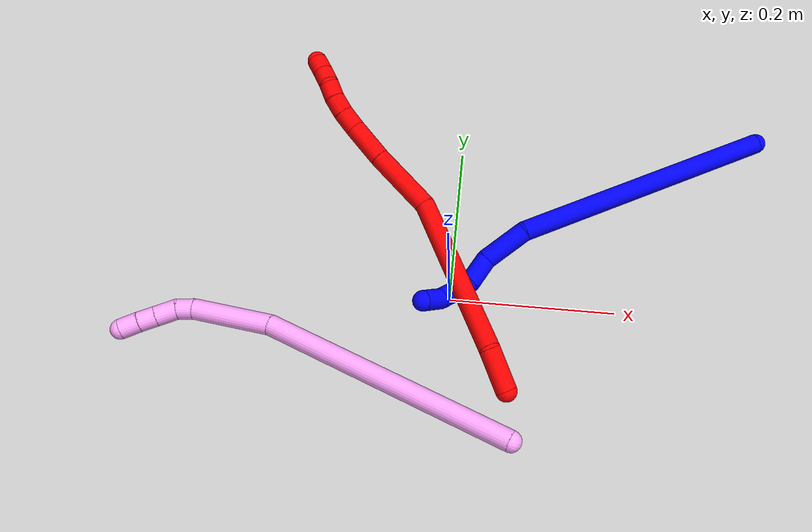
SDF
<sdf version="1.7">
 <world name="default">
  <model name="1">
   <static>0</static>
   <link name="1">
    <collision name="collision-cylinder-e_1_1_4">
     <pose>-0.060836 -0.056444 -0.144412 2.769 -0.373905 -1.57439</pose>
     <geometry><cylinder><radius>0.0125</radius><length>0.333117</length></cylinder></geometry>
     <surface>
      <friction><ode><mu>1.16</mu><mu2>1.16</mu2><slip1>0</slip1><slip2>0</slip2></ode></friction>
      <contact><ode><kp>1e+06</kp><kd>1</kd><max_vel>0</max_vel><min_depth>0.001</min_depth></ode></contact>
     </surface>
    </collision>
    <visual name="visual-cylinder-e_1_1_4">
     <pose>-0.060836 -0.056444 -0.144412 2.769 -0.373905 -1.57439</pose>
     <geometry><cylinder><radius>0.0125</radius><length>0.333117</length></cylinder></geometry>
     <material><ambient>0 0 1 1</ambient></material>
    </visual>
    <collision name="collision-cylinder-e_2_4_5">
     <pose>-0.13418 -0.113746 -0.315101 3.10893 -0.444044 -2.99712</pose>
     <geometry><cylinder><radius>0.0125</radius><length>0.058231</length></cylinder></geometry>
     <surface>
      <friction><ode><mu>1.16</mu><mu2>1.16</mu2><slip1>0</slip1><slip2>0</slip2></ode></friction>
      <contact><ode><kp>1e+06</kp><kd>1</kd><max_vel>0</max_vel><min_depth>0.001</min_depth></ode></contact>
     </surface>
    </collision>
    <visual name="visual-cylinder-e_2_4_5">
     <pose>-0.13418 -0.113746 -0.315101 3.10893 -0.444044 -2.99712</pose>
     <geometry><cylinder><radius>0.0125</radius><length>0.058231</length></cylinder></geometry>
     <material><ambient>0 0 1 1</ambient></material>
    </visual>
    <collision name="collision-cylinder-e_3_5_6">
     <pose>-0.14869 -0.11175 -0.35885 -2.97962 -0.112623 1.2141</pose>
     <geometry><cylinder><radius>0.0125</radius><length>0.035632</length></cylinder></geometry>
     <surface>
      <friction><ode><mu>1.16</mu><mu2>1.16</mu2><slip1>0</slip1><slip2>0</slip2></ode></friction>
      <contact><ode><kp>1e+06</kp><kd>1</kd><max_vel>0</max_vel><min_depth>0.001</min_depth></ode></contact>
     </surface>
    </collision>
    <visual name="visual-cylinder-e_3_5_6">
     <pose>-0.14869 -0.11175 -0.35885 -2.97962 -0.112623 1.2141</pose>
     <geometry><cylinder><radius>0.0125</radius><length>0.035632</length></cylinder></geometry>
     <material><ambient>0 0 1 1</ambient></material>
    </visual>
    <collision name="collision-cylinder-e_4_6_7">
     <pose>-0.152213 -0.111948 -0.386352 2.8461 -0.144104 -0.903075</pose>
     <geometry><cylinder><radius>0.0125</radius><length>0.02119</length></cylinder></geometry>
     <surface>
      <friction><ode><mu>1.16</mu><mu2>1.16</mu2><slip1>0</slip1><slip2>0</slip2></ode></friction>
      <contact><ode><kp>1e+06</kp><kd>1</kd><max_vel>0</max_vel><min_depth>0.001</min_depth></ode></contact>
     </surface>
    </collision>
    <visual name="visual-cylinder-e_4_6_7">
     <pose>-0.152213 -0.111948 -0.386352 2.8461 -0.144104 -0.903075</pose>
     <geometry><cylinder><radius>0.0125</radius><length>0.02119</length></cylinder></geometry>
     <material><ambient>0 0 1 1</ambient></material>
    </visual>
    <collision name="collision-cylinder-e_5_7_8">
     <pose>-0.154818 -0.118677 -0.406695 2.79922 -0.098601 -0.556026</pose>
     <geometry><cylinder><radius>0.0125</radius><length>0.022001</length></cylinder></geometry>
     <surface>
      <friction><ode><mu>1.16</mu><mu2>1.16</mu2><slip1>0</slip1><slip2>0</slip2></ode></friction>
      <contact><ode><kp>1e+06</kp><kd>1</kd><max_vel>0</max_vel><min_depth>0.001</min_depth></ode></contact>
     </surface>
    </collision>
    <visual name="visual-cylinder-e_5_7_8">
     <pose>-0.154818 -0.118677 -0.406695 2.79922 -0.098601 -0.556026</pose>
     <geometry><cylinder><radius>0.0125</radius><length>0.022001</length></cylinder></geometry>
     <material><ambient>0 0 1 1</ambient></material>
    </visual>
    <collision name="collision-cylinder-e_6_8_2">
     <pose>-0.153213 -0.132072 -0.427996 2.41745 0.181164 0.47072</pose>
     <geometry><cylinder><radius>0.0125</radius><length>0.02983</length></cylinder></geometry>
     <surface>
      <friction><ode><mu>1.16</mu><mu2>1.16</mu2><slip1>0</slip1><slip2>0</slip2></ode></friction>
      <contact><ode><kp>1e+06</kp><kd>1</kd><max_vel>0</max_vel><min_depth>0.001</min_depth></ode></contact>
     </surface>
    </collision>
    <visual name="visual-cylinder-e_6_8_2">
     <pose>-0.153213 -0.132072 -0.427996 2.41745 0.181164 0.47072</pose>
     <geometry><cylinder><radius>0.0125</radius><length>0.02983</length></cylinder></geometry>
     <material><ambient>0 0 1 1</ambient></material>
    </visual>
    <collision name="collision-sphere-2">
     <pose>-0.150526 -0.141791 -0.438986 0 -0 0</pose>
     <geometry><sphere><radius>0.0125</radius></sphere></geometry>
     <surface>
      <friction><ode><mu>1.16</mu><mu2>1.16</mu2><slip1>0</slip1><slip2>0</slip2></ode></friction>
      <contact><ode><kp>1e+06</kp><kd>1</kd><max_vel>0</max_vel><min_depth>0.001</min_depth></ode></contact>
     </surface>
    </collision>
    <visual name="visual-sphere-2">
     <pose>-0.150526 -0.141791 -0.438986 0 -0 0</pose>
     <geometry><sphere><radius>0.0125</radius></sphere></geometry>
     <material><ambient>0 0 1 1</ambient></material>
    </visual>
    <collision name="collision-sphere-4">
     <pose>-0.121672 -0.112887 -0.288824 0 -0 0</pose>
     <geometry><sphere><radius>0.0125</radius></sphere></geometry>
     <surface>
      <friction><ode><mu>1.16</mu><mu2>1.16</mu2><slip1>0</slip1><slip2>0</slip2></ode></friction>
      <contact><ode><kp>1e+06</kp><kd>1</kd><max_vel>0</max_vel><min_depth>0.001</min_depth></ode></contact>
     </surface>
    </collision>
    <visual name="visual-sphere-4">
     <pose>-0.121672 -0.112887 -0.288824 0 -0 0</pose>
     <geometry><sphere><radius>0.0125</radius></sphere></geometry>
     <material><ambient>0 0 1 1</ambient></material>
    </visual>
    <collision name="collision-sphere-1">
     <geometry><sphere><radius>0.0125</radius></sphere></geometry>
     <surface>
      <friction><ode><mu>1.16</mu><mu2>1.16</mu2><slip1>0</slip1><slip2>0</slip2></ode></friction>
      <contact><ode><kp>1e+06</kp><kd>1</kd><max_vel>0</max_vel><min_depth>0.001</min_depth></ode></contact>
     </surface>
    </collision>
    <visual name="visual-sphere-1">
     <geometry><sphere><radius>0.0125</radius></sphere></geometry>
     <material><ambient>0 0 1 1</ambient></material>
    </visual>
    <collision name="collision-sphere-8">
     <pose>-0.155901 -0.122352 -0.417006 0 -0 0</pose>
     <geometry><sphere><radius>0.0125</radius></sphere></geometry>
     <surface>
      <friction><ode><mu>1.16</mu><mu2>1.16</mu2><slip1>0</slip1><slip2>0</slip2></ode></friction>
      <contact><ode><kp>1e+06</kp><kd>1</kd><max_vel>0</max_vel><min_depth>0.001</min_depth></ode></contact>
     </surface>
    </collision>
    <visual name="visual-sphere-8">
     <pose>-0.155901 -0.122352 -0.417006 0 -0 0</pose>
     <geometry><sphere><radius>0.0125</radius></sphere></geometry>
     <material><ambient>0 0 1 1</ambient></material>
    </visual>
    <collision name="collision-sphere-5">
     <pose>-0.146687 -0.114605 -0.341379 0 -0 0</pose>
     <geometry><sphere><radius>0.0125</radius></sphere></geometry>
     <surface>
      <friction><ode><mu>1.16</mu><mu2>1.16</mu2><slip1>0</slip1><slip2>0</slip2></ode></friction>
      <contact><ode><kp>1e+06</kp><kd>1</kd><max_vel>0</max_vel><min_depth>0.001</min_depth></ode></contact>
     </surface>
    </collision>
    <visual name="visual-sphere-5">
     <pose>-0.146687 -0.114605 -0.341379 0 -0 0</pose>
     <geometry><sphere><radius>0.0125</radius></sphere></geometry>
     <material><ambient>0 0 1 1</ambient></material>
    </visual>
    <collision name="collision-sphere-6">
     <pose>-0.150692 -0.108895 -0.376322 0 -0 0</pose>
     <geometry><sphere><radius>0.0125</radius></sphere></geometry>
     <surface>
      <friction><ode><mu>1.16</mu><mu2>1.16</mu2><slip1>0</slip1><slip2>0</slip2></ode></friction>
      <contact><ode><kp>1e+06</kp><kd>1</kd><max_vel>0</max_vel><min_depth>0.001</min_depth></ode></contact>
     </surface>
    </collision>
    <visual name="visual-sphere-6">
     <pose>-0.150692 -0.108895 -0.376322 0 -0 0</pose>
     <geometry><sphere><radius>0.0125</radius></sphere></geometry>
     <material><ambient>0 0 1 1</ambient></material>
    </visual>
    <collision name="collision-sphere-7">
     <pose>-0.153735 -0.115002 -0.396383 0 -0 0</pose>
     <geometry><sphere><radius>0.0125</radius></sphere></geometry>
     <surface>
      <friction><ode><mu>1.16</mu><mu2>1.16</mu2><slip1>0</slip1><slip2>0</slip2></ode></friction>
      <contact><ode><kp>1e+06</kp><kd>1</kd><max_vel>0</max_vel><min_depth>0.001</min_depth></ode></contact>
     </surface>
    </collision>
    <visual name="visual-sphere-7">
     <pose>-0.153735 -0.115002 -0.396383 0 -0 0</pose>
     <geometry><sphere><radius>0.0125</radius></sphere></geometry>
     <material><ambient>0 0 1 1</ambient></material>
    </visual>
    <inertial>
     <pose>-0.089158 -0.076661 -0.218285 0 -0 0</pose>
     <mass>0.5</mass>
     <inertia>
      <ixx>-0.00291</ixx>
      <ixy>0</ixy>
      <ixz>0</ixz>
      <iyy>-0.002455</iyy>
      <iyz>0</iyz>
      <izz>0.002155</izz>
     </inertia>
    </inertial>
   </link>
   <pose>0.377439 0.245056 0.01187 -1.72562 -0.834265 -0.442422</pose>
  </model>
  <model name="2">
   <static>0</static>
   <link name="2">
    <collision name="collision-cylinder-e_1_1_4">
     <pose>0.001218 0.001195 0.02543 -0.046977 0.047793 -0.001123</pose>
     <geometry><cylinder><radius>0.0125</radius><length>0.050974</length></cylinder></geometry>
     <surface>
      <friction><ode><mu>1.16</mu><mu2>1.16</mu2><slip1>0</slip1><slip2>0</slip2></ode></friction>
      <contact><ode><kp>1e+06</kp><kd>1</kd><max_vel>0</max_vel><min_depth>0.001</min_depth></ode></contact>
     </surface>
    </collision>
    <visual name="visual-cylinder-e_1_1_4">
     <pose>0.001218 0.001195 0.02543 -0.046977 0.047793 -0.001123</pose>
     <geometry><cylinder><radius>0.0125</radius><length>0.050974</length></cylinder></geometry>
     <material><ambient>1 0 0 1</ambient></material>
    </visual>
    <collision name="collision-cylinder-e_2_4_5">
     <pose>-0.005476 0.039664 0.146994 -0.36987 -0.076576 0.014332</pose>
     <geometry><cylinder><radius>0.0125</radius><length>0.206821</length></cylinder></geometry>
     <surface>
      <friction><ode><mu>1.16</mu><mu2>1.16</mu2><slip1>0</slip1><slip2>0</slip2></ode></friction>
      <contact><ode><kp>1e+06</kp><kd>1</kd><max_vel>0</max_vel><min_depth>0.001</min_depth></ode></contact>
     </surface>
    </collision>
    <visual name="visual-cylinder-e_2_4_5">
     <pose>-0.005476 0.039664 0.146994 -0.36987 -0.076576 0.014332</pose>
     <geometry><cylinder><radius>0.0125</radius><length>0.206821</length></cylinder></geometry>
     <material><ambient>1 0 0 1</ambient></material>
    </visual>
    <collision name="collision-cylinder-e_3_5_6">
     <pose>-0.026819 0.076391 0.2829 0.013706 -0.325672 -0.002252</pose>
     <geometry><cylinder><radius>0.0125</radius><length>0.083964</length></cylinder></geometry>
     <surface>
      <friction><ode><mu>1.16</mu><mu2>1.16</mu2><slip1>0</slip1><slip2>0</slip2></ode></friction>
      <contact><ode><kp>1e+06</kp><kd>1</kd><max_vel>0</max_vel><min_depth>0.001</min_depth></ode></contact>
     </surface>
    </collision>
    <visual name="visual-cylinder-e_3_5_6">
     <pose>-0.026819 0.076391 0.2829 0.013706 -0.325672 -0.002252</pose>
     <geometry><cylinder><radius>0.0125</radius><length>0.083964</length></cylinder></geometry>
     <material><ambient>1 0 0 1</ambient></material>
    </visual>
    <collision name="collision-cylinder-e_4_6_7">
     <pose>-0.047011 0.076849 0.347081 -0.041076 -0.269988 0.00558</pose>
     <geometry><cylinder><radius>0.0125</radius><length>0.050696</length></cylinder></geometry>
     <surface>
      <friction><ode><mu>1.16</mu><mu2>1.16</mu2><slip1>0</slip1><slip2>0</slip2></ode></friction>
      <contact><ode><kp>1e+06</kp><kd>1</kd><max_vel>0</max_vel><min_depth>0.001</min_depth></ode></contact>
     </surface>
    </collision>
    <visual name="visual-cylinder-e_4_6_7">
     <pose>-0.047011 0.076849 0.347081 -0.041076 -0.269988 0.00558</pose>
     <geometry><cylinder><radius>0.0125</radius><length>0.050696</length></cylinder></geometry>
     <material><ambient>1 0 0 1</ambient></material>
    </visual>
    <collision name="collision-cylinder-e_5_7_8">
     <pose>-0.056198 0.07622 0.383811 0.13172 -0.192778 -0.012754</pose>
     <geometry><cylinder><radius>0.0125</radius><length>0.025326</length></cylinder></geometry>
     <surface>
      <friction><ode><mu>1.16</mu><mu2>1.16</mu2><slip1>0</slip1><slip2>0</slip2></ode></friction>
      <contact><ode><kp>1e+06</kp><kd>1</kd><max_vel>0</max_vel><min_depth>0.001</min_depth></ode></contact>
     </surface>
    </collision>
    <visual name="visual-cylinder-e_5_7_8">
     <pose>-0.056198 0.07622 0.383811 0.13172 -0.192778 -0.012754</pose>
     <geometry><cylinder><radius>0.0125</radius><length>0.025326</length></cylinder></geometry>
     <material><ambient>1 0 0 1</ambient></material>
    </visual>
    <collision name="collision-cylinder-e_6_8_9">
     <pose>-0.059467 0.073536 0.407156 0.095089 -0.075925 -0.003614</pose>
     <geometry><cylinder><radius>0.0125</radius><length>0.022212</length></cylinder></geometry>
     <surface>
      <friction><ode><mu>1.16</mu><mu2>1.16</mu2><slip1>0</slip1><slip2>0</slip2></ode></friction>
      <contact><ode><kp>1e+06</kp><kd>1</kd><max_vel>0</max_vel><min_depth>0.001</min_depth></ode></contact>
     </surface>
    </collision>
    <visual name="visual-cylinder-e_6_8_9">
     <pose>-0.059467 0.073536 0.407156 0.095089 -0.075925 -0.003614</pose>
     <geometry><cylinder><radius>0.0125</radius><length>0.022212</length></cylinder></geometry>
     <material><ambient>1 0 0 1</ambient></material>
    </visual>
    <collision name="collision-cylinder-e_7_9_10">
     <pose>-0.059761 0.072655 0.428165 -0.01708 0.054864 -0.000469</pose>
     <geometry><cylinder><radius>0.0125</radius><length>0.020003</length></cylinder></geometry>
     <surface>
      <friction><ode><mu>1.16</mu><mu2>1.16</mu2><slip1>0</slip1><slip2>0</slip2></ode></friction>
      <contact><ode><kp>1e+06</kp><kd>1</kd><max_vel>0</max_vel><min_depth>0.001</min_depth></ode></contact>
     </surface>
    </collision>
    <visual name="visual-cylinder-e_7_9_10">
     <pose>-0.059761 0.072655 0.428165 -0.01708 0.054864 -0.000469</pose>
     <geometry><cylinder><radius>0.0125</radius><length>0.020003</length></cylinder></geometry>
     <material><ambient>1 0 0 1</ambient></material>
    </visual>
    <collision name="collision-cylinder-e_8_10_11">
     <pose>-0.060369 0.076171 0.447504 -0.343366 -0.115846 0.020108</pose>
     <geometry><cylinder><radius>0.0125</radius><length>0.020004</length></cylinder></geometry>
     <surface>
      <friction><ode><mu>1.16</mu><mu2>1.16</mu2><slip1>0</slip1><slip2>0</slip2></ode></friction>
      <contact><ode><kp>1e+06</kp><kd>1</kd><max_vel>0</max_vel><min_depth>0.001</min_depth></ode></contact>
     </surface>
    </collision>
    <visual name="visual-cylinder-e_8_10_11">
     <pose>-0.060369 0.076171 0.447504 -0.343366 -0.115846 0.020108</pose>
     <geometry><cylinder><radius>0.0125</radius><length>0.020004</length></cylinder></geometry>
     <material><ambient>1 0 0 1</ambient></material>
    </visual>
    <collision name="collision-cylinder-e_9_11_2">
     <pose>-0.062906 0.082253 0.466378 -0.280016 -0.138553 0.019557</pose>
     <geometry><cylinder><radius>0.0125</radius><length>0.020001</length></cylinder></geometry>
     <surface>
      <friction><ode><mu>1.16</mu><mu2>1.16</mu2><slip1>0</slip1><slip2>0</slip2></ode></friction>
      <contact><ode><kp>1e+06</kp><kd>1</kd><max_vel>0</max_vel><min_depth>0.001</min_depth></ode></contact>
     </surface>
    </collision>
    <visual name="visual-cylinder-e_9_11_2">
     <pose>-0.062906 0.082253 0.466378 -0.280016 -0.138553 0.019557</pose>
     <geometry><cylinder><radius>0.0125</radius><length>0.020001</length></cylinder></geometry>
     <material><ambient>1 0 0 1</ambient></material>
    </visual>
    <collision name="collision-sphere-2">
     <pose>-0.064287 0.08499 0.475897 0 -0 0</pose>
     <geometry><sphere><radius>0.0125</radius></sphere></geometry>
     <surface>
      <friction><ode><mu>1.16</mu><mu2>1.16</mu2><slip1>0</slip1><slip2>0</slip2></ode></friction>
      <contact><ode><kp>1e+06</kp><kd>1</kd><max_vel>0</max_vel><min_depth>0.001</min_depth></ode></contact>
     </surface>
    </collision>
    <visual name="visual-sphere-2">
     <pose>-0.064287 0.08499 0.475897 0 -0 0</pose>
     <geometry><sphere><radius>0.0125</radius></sphere></geometry>
     <material><ambient>1 0 0 1</ambient></material>
    </visual>
    <collision name="collision-sphere-11">
     <pose>-0.061525 0.079515 0.456859 0 -0 0</pose>
     <geometry><sphere><radius>0.0125</radius></sphere></geometry>
     <surface>
      <friction><ode><mu>1.16</mu><mu2>1.16</mu2><slip1>0</slip1><slip2>0</slip2></ode></friction>
      <contact><ode><kp>1e+06</kp><kd>1</kd><max_vel>0</max_vel><min_depth>0.001</min_depth></ode></contact>
     </surface>
    </collision>
    <visual name="visual-sphere-11">
     <pose>-0.061525 0.079515 0.456859 0 -0 0</pose>
     <geometry><sphere><radius>0.0125</radius></sphere></geometry>
     <material><ambient>1 0 0 1</ambient></material>
    </visual>
    <collision name="collision-sphere-10">
     <pose>-0.059212 0.072826 0.438149 0 -0 0</pose>
     <geometry><sphere><radius>0.0125</radius></sphere></geometry>
     <surface>
      <friction><ode><mu>1.16</mu><mu2>1.16</mu2><slip1>0</slip1><slip2>0</slip2></ode></friction>
      <contact><ode><kp>1e+06</kp><kd>1</kd><max_vel>0</max_vel><min_depth>0.001</min_depth></ode></contact>
     </surface>
    </collision>
    <visual name="visual-sphere-10">
     <pose>-0.059212 0.072826 0.438149 0 -0 0</pose>
     <geometry><sphere><radius>0.0125</radius></sphere></geometry>
     <material><ambient>1 0 0 1</ambient></material>
    </visual>
    <collision name="collision-sphere-9">
     <pose>-0.060309 0.072485 0.41818 0 -0 0</pose>
     <geometry><sphere><radius>0.0125</radius></sphere></geometry>
     <surface>
      <friction><ode><mu>1.16</mu><mu2>1.16</mu2><slip1>0</slip1><slip2>0</slip2></ode></friction>
      <contact><ode><kp>1e+06</kp><kd>1</kd><max_vel>0</max_vel><min_depth>0.001</min_depth></ode></contact>
     </surface>
    </collision>
    <visual name="visual-sphere-9">
     <pose>-0.060309 0.072485 0.41818 0 -0 0</pose>
     <geometry><sphere><radius>0.0125</radius></sphere></geometry>
     <material><ambient>1 0 0 1</ambient></material>
    </visual>
    <collision name="collision-sphere-4">
     <pose>0.002435 0.002391 0.05086 0 -0 0</pose>
     <geometry><sphere><radius>0.0125</radius></sphere></geometry>
     <surface>
      <friction><ode><mu>1.16</mu><mu2>1.16</mu2><slip1>0</slip1><slip2>0</slip2></ode></friction>
      <contact><ode><kp>1e+06</kp><kd>1</kd><max_vel>0</max_vel><min_depth>0.001</min_depth></ode></contact>
     </surface>
    </collision>
    <visual name="visual-sphere-4">
     <pose>0.002435 0.002391 0.05086 0 -0 0</pose>
     <geometry><sphere><radius>0.0125</radius></sphere></geometry>
     <material><ambient>1 0 0 1</ambient></material>
    </visual>
    <collision name="collision-sphere-1">
     <geometry><sphere><radius>0.0125</radius></sphere></geometry>
     <surface>
      <friction><ode><mu>1.16</mu><mu2>1.16</mu2><slip1>0</slip1><slip2>0</slip2></ode></friction>
      <contact><ode><kp>1e+06</kp><kd>1</kd><max_vel>0</max_vel><min_depth>0.001</min_depth></ode></contact>
     </surface>
    </collision>
    <visual name="visual-sphere-1">
     <geometry><sphere><radius>0.0125</radius></sphere></geometry>
     <material><ambient>1 0 0 1</ambient></material>
    </visual>
    <collision name="collision-sphere-8">
     <pose>-0.058624 0.074588 0.396132 0 -0 0</pose>
     <geometry><sphere><radius>0.0125</radius></sphere></geometry>
     <surface>
      <friction><ode><mu>1.16</mu><mu2>1.16</mu2><slip1>0</slip1><slip2>0</slip2></ode></friction>
      <contact><ode><kp>1e+06</kp><kd>1</kd><max_vel>0</max_vel><min_depth>0.001</min_depth></ode></contact>
     </surface>
    </collision>
    <visual name="visual-sphere-8">
     <pose>-0.058624 0.074588 0.396132 0 -0 0</pose>
     <geometry><sphere><radius>0.0125</radius></sphere></geometry>
     <material><ambient>1 0 0 1</ambient></material>
    </visual>
    <collision name="collision-sphere-5">
     <pose>-0.013387 0.076936 0.243129 0 -0 0</pose>
     <geometry><sphere><radius>0.0125</radius></sphere></geometry>
     <surface>
      <friction><ode><mu>1.16</mu><mu2>1.16</mu2><slip1>0</slip1><slip2>0</slip2></ode></friction>
      <contact><ode><kp>1e+06</kp><kd>1</kd><max_vel>0</max_vel><min_depth>0.001</min_depth></ode></contact>
     </surface>
    </collision>
    <visual name="visual-sphere-5">
     <pose>-0.013387 0.076936 0.243129 0 -0 0</pose>
     <geometry><sphere><radius>0.0125</radius></sphere></geometry>
     <material><ambient>1 0 0 1</ambient></material>
    </visual>
    <collision name="collision-sphere-6">
     <pose>-0.040251 0.075846 0.322672 0 -0 0</pose>
     <geometry><sphere><radius>0.0125</radius></sphere></geometry>
     <surface>
      <friction><ode><mu>1.16</mu><mu2>1.16</mu2><slip1>0</slip1><slip2>0</slip2></ode></friction>
      <contact><ode><kp>1e+06</kp><kd>1</kd><max_vel>0</max_vel><min_depth>0.001</min_depth></ode></contact>
     </surface>
    </collision>
    <visual name="visual-sphere-6">
     <pose>-0.040251 0.075846 0.322672 0 -0 0</pose>
     <geometry><sphere><radius>0.0125</radius></sphere></geometry>
     <material><ambient>1 0 0 1</ambient></material>
    </visual>
    <collision name="collision-sphere-7">
     <pose>-0.053772 0.077852 0.37149 0 -0 0</pose>
     <geometry><sphere><radius>0.0125</radius></sphere></geometry>
     <surface>
      <friction><ode><mu>1.16</mu><mu2>1.16</mu2><slip1>0</slip1><slip2>0</slip2></ode></friction>
      <contact><ode><kp>1e+06</kp><kd>1</kd><max_vel>0</max_vel><min_depth>0.001</min_depth></ode></contact>
     </surface>
    </collision>
    <visual name="visual-sphere-7">
     <pose>-0.053772 0.077852 0.37149 0 -0 0</pose>
     <geometry><sphere><radius>0.0125</radius></sphere></geometry>
     <material><ambient>1 0 0 1</ambient></material>
    </visual>
    <inertial>
     <pose>-0.024222 0.05352 0.23731 0 -0 0</pose>
     <mass>0.5</mass>
     <inertia>
      <ixx>0.000832</ixx>
      <ixy>0</ixy>
      <ixz>0</ixz>
      <iyy>0.000799</iyy>
      <iyz>0</iyz>
      <izz>-0.000155</izz>
     </inertia>
    </inertial>
   </link>
   <pose>0.074827 -0.115705 0.036027 -1.28019 -0.399089 0.42558</pose>
  </model>
  <model name="4">
   <static>0</static>
   <link name="4">
    <collision name="collision-cylinder-e_1_1_4">
     <pose>-0.124733 0.024675 0.0927 -0.260148 -0.915208 0.128664</pose>
     <geometry><cylinder><radius>0.0125</radius><length>0.314709</length></cylinder></geometry>
     <surface>
      <friction><ode><mu>1.16</mu><mu2>1.16</mu2><slip1>0</slip1><slip2>0</slip2></ode></friction>
      <contact><ode><kp>1e+06</kp><kd>1</kd><max_vel>0</max_vel><min_depth>0.001</min_depth></ode></contact>
     </surface>
    </collision>
    <visual name="visual-cylinder-e_1_1_4">
     <pose>-0.124733 0.024675 0.0927 -0.260148 -0.915208 0.128664</pose>
     <geometry><cylinder><radius>0.0125</radius><length>0.314709</length></cylinder></geometry>
     <material><ambient>1 0.65098 0.996078 1</ambient></material>
    </visual>
    <collision name="collision-cylinder-e_2_4_5">
     <pose>-0.28423 0.046298 0.218635 0.091558 -0.805763 -0.039044</pose>
     <geometry><cylinder><radius>0.0125</radius><length>0.096383</length></cylinder></geometry>
     <surface>
      <friction><ode><mu>1.16</mu><mu2>1.16</mu2><slip1>0</slip1><slip2>0</slip2></ode></friction>
      <contact><ode><kp>1e+06</kp><kd>1</kd><max_vel>0</max_vel><min_depth>0.001</min_depth></ode></contact>
     </surface>
    </collision>
    <visual name="visual-cylinder-e_2_4_5">
     <pose>-0.28423 0.046298 0.218635 0.091558 -0.805763 -0.039044</pose>
     <geometry><cylinder><radius>0.0125</radius><length>0.096383</length></cylinder></geometry>
     <material><ambient>1 0.65098 0.996078 1</ambient></material>
    </visual>
    <collision name="collision-cylinder-e_3_5_6">
     <pose>-0.325164 0.040525 0.259386 0.347383 -0.657433 -0.119553</pose>
     <geometry><cylinder><radius>0.0125</radius><length>0.020196</length></cylinder></geometry>
     <surface>
      <friction><ode><mu>1.16</mu><mu2>1.16</mu2><slip1>0</slip1><slip2>0</slip2></ode></friction>
      <contact><ode><kp>1e+06</kp><kd>1</kd><max_vel>0</max_vel><min_depth>0.001</min_depth></ode></contact>
     </surface>
    </collision>
    <visual name="visual-cylinder-e_3_5_6">
     <pose>-0.325164 0.040525 0.259386 0.347383 -0.657433 -0.119553</pose>
     <geometry><cylinder><radius>0.0125</radius><length>0.020196</length></cylinder></geometry>
     <material><ambient>1 0.65098 0.996078 1</ambient></material>
    </visual>
    <collision name="collision-cylinder-e_4_6_7">
     <pose>-0.336952 0.030471 0.275762 0.691359 -0.454333 -0.166115</pose>
     <geometry><cylinder><radius>0.0125</radius><length>0.025599</length></cylinder></geometry>
     <surface>
      <friction><ode><mu>1.16</mu><mu2>1.16</mu2><slip1>0</slip1><slip2>0</slip2></ode></friction>
      <contact><ode><kp>1e+06</kp><kd>1</kd><max_vel>0</max_vel><min_depth>0.001</min_depth></ode></contact>
     </surface>
    </collision>
    <visual name="visual-cylinder-e_4_6_7">
     <pose>-0.336952 0.030471 0.275762 0.691359 -0.454333 -0.166115</pose>
     <geometry><cylinder><radius>0.0125</radius><length>0.025599</length></cylinder></geometry>
     <material><ambient>1 0.65098 0.996078 1</ambient></material>
    </visual>
    <collision name="collision-cylinder-e_5_7_8">
     <pose>-0.347047 0.017281 0.291797 0.684649 -0.450358 -0.162895</pose>
     <geometry><cylinder><radius>0.0125</radius><length>0.020575</length></cylinder></geometry>
     <surface>
      <friction><ode><mu>1.16</mu><mu2>1.16</mu2><slip1>0</slip1><slip2>0</slip2></ode></friction>
      <contact><ode><kp>1e+06</kp><kd>1</kd><max_vel>0</max_vel><min_depth>0.001</min_depth></ode></contact>
     </surface>
    </collision>
    <visual name="visual-cylinder-e_5_7_8">
     <pose>-0.347047 0.017281 0.291797 0.684649 -0.450358 -0.162895</pose>
     <geometry><cylinder><radius>0.0125</radius><length>0.020575</length></cylinder></geometry>
     <material><ambient>1 0.65098 0.996078 1</ambient></material>
    </visual>
    <collision name="collision-cylinder-e_6_8_2">
     <pose>-0.356611 0.004615 0.306371 0.743845 -0.468282 -0.185544</pose>
     <geometry><cylinder><radius>0.0125</radius><length>0.022538</length></cylinder></geometry>
     <surface>
      <friction><ode><mu>1.16</mu><mu2>1.16</mu2><slip1>0</slip1><slip2>0</slip2></ode></friction>
      <contact><ode><kp>1e+06</kp><kd>1</kd><max_vel>0</max_vel><min_depth>0.001</min_depth></ode></contact>
     </surface>
    </collision>
    <visual name="visual-cylinder-e_6_8_2">
     <pose>-0.356611 0.004615 0.306371 0.743845 -0.468282 -0.185544</pose>
     <geometry><cylinder><radius>0.0125</radius><length>0.022538</length></cylinder></geometry>
     <material><ambient>1 0.65098 0.996078 1</ambient></material>
    </visual>
    <collision name="collision-sphere-2">
     <pose>-0.361698 -0.002194 0.313771 0 -0 0</pose>
     <geometry><sphere><radius>0.0125</radius></sphere></geometry>
     <surface>
      <friction><ode><mu>1.16</mu><mu2>1.16</mu2><slip1>0</slip1><slip2>0</slip2></ode></friction>
      <contact><ode><kp>1e+06</kp><kd>1</kd><max_vel>0</max_vel><min_depth>0.001</min_depth></ode></contact>
     </surface>
    </collision>
    <visual name="visual-sphere-2">
     <pose>-0.361698 -0.002194 0.313771 0 -0 0</pose>
     <geometry><sphere><radius>0.0125</radius></sphere></geometry>
     <material><ambient>1 0.65098 0.996078 1</ambient></material>
    </visual>
    <collision name="collision-sphere-4">
     <pose>-0.249466 0.049349 0.185399 0 -0 0</pose>
     <geometry><sphere><radius>0.0125</radius></sphere></geometry>
     <surface>
      <friction><ode><mu>1.16</mu><mu2>1.16</mu2><slip1>0</slip1><slip2>0</slip2></ode></friction>
      <contact><ode><kp>1e+06</kp><kd>1</kd><max_vel>0</max_vel><min_depth>0.001</min_depth></ode></contact>
     </surface>
    </collision>
    <visual name="visual-sphere-4">
     <pose>-0.249466 0.049349 0.185399 0 -0 0</pose>
     <geometry><sphere><radius>0.0125</radius></sphere></geometry>
     <material><ambient>1 0.65098 0.996078 1</ambient></material>
    </visual>
    <collision name="collision-sphere-1">
     <geometry><sphere><radius>0.0125</radius></sphere></geometry>
     <surface>
      <friction><ode><mu>1.16</mu><mu2>1.16</mu2><slip1>0</slip1><slip2>0</slip2></ode></friction>
      <contact><ode><kp>1e+06</kp><kd>1</kd><max_vel>0</max_vel><min_depth>0.001</min_depth></ode></contact>
     </surface>
    </collision>
    <visual name="visual-sphere-1">
     <geometry><sphere><radius>0.0125</radius></sphere></geometry>
     <material><ambient>1 0.65098 0.996078 1</ambient></material>
    </visual>
    <collision name="collision-sphere-8">
     <pose>-0.351525 0.011424 0.298971 0 -0 0</pose>
     <geometry><sphere><radius>0.0125</radius></sphere></geometry>
     <surface>
      <friction><ode><mu>1.16</mu><mu2>1.16</mu2><slip1>0</slip1><slip2>0</slip2></ode></friction>
      <contact><ode><kp>1e+06</kp><kd>1</kd><max_vel>0</max_vel><min_depth>0.001</min_depth></ode></contact>
     </surface>
    </collision>
    <visual name="visual-sphere-8">
     <pose>-0.351525 0.011424 0.298971 0 -0 0</pose>
     <geometry><sphere><radius>0.0125</radius></sphere></geometry>
     <material><ambient>1 0.65098 0.996078 1</ambient></material>
    </visual>
    <collision name="collision-sphere-5">
     <pose>-0.318993 0.043246 0.25187 0 -0 0</pose>
     <geometry><sphere><radius>0.0125</radius></sphere></geometry>
     <surface>
      <friction><ode><mu>1.16</mu><mu2>1.16</mu2><slip1>0</slip1><slip2>0</slip2></ode></friction>
      <contact><ode><kp>1e+06</kp><kd>1</kd><max_vel>0</max_vel><min_depth>0.001</min_depth></ode></contact>
     </surface>
    </collision>
    <visual name="visual-sphere-5">
     <pose>-0.318993 0.043246 0.25187 0 -0 0</pose>
     <geometry><sphere><radius>0.0125</radius></sphere></geometry>
     <material><ambient>1 0.65098 0.996078 1</ambient></material>
    </visual>
    <collision name="collision-sphere-6">
     <pose>-0.331334 0.037804 0.266902 0 -0 0</pose>
     <geometry><sphere><radius>0.0125</radius></sphere></geometry>
     <surface>
      <friction><ode><mu>1.16</mu><mu2>1.16</mu2><slip1>0</slip1><slip2>0</slip2></ode></friction>
      <contact><ode><kp>1e+06</kp><kd>1</kd><max_vel>0</max_vel><min_depth>0.001</min_depth></ode></contact>
     </surface>
    </collision>
    <visual name="visual-sphere-6">
     <pose>-0.331334 0.037804 0.266902 0 -0 0</pose>
     <geometry><sphere><radius>0.0125</radius></sphere></geometry>
     <material><ambient>1 0.65098 0.996078 1</ambient></material>
    </visual>
    <collision name="collision-sphere-7">
     <pose>-0.342569 0.023138 0.284622 0 -0 0</pose>
     <geometry><sphere><radius>0.0125</radius></sphere></geometry>
     <surface>
      <friction><ode><mu>1.16</mu><mu2>1.16</mu2><slip1>0</slip1><slip2>0</slip2></ode></friction>
      <contact><ode><kp>1e+06</kp><kd>1</kd><max_vel>0</max_vel><min_depth>0.001</min_depth></ode></contact>
     </surface>
    </collision>
    <visual name="visual-sphere-7">
     <pose>-0.342569 0.023138 0.284622 0 -0 0</pose>
     <geometry><sphere><radius>0.0125</radius></sphere></geometry>
     <material><ambient>1 0.65098 0.996078 1</ambient></material>
    </visual>
    <inertial>
     <pose>-0.19404 0.028571 0.150905 0 -0 0</pose>
     <mass>0.5</mass>
     <inertia>
      <ixx>0.001811</ixx>
      <ixy>0</ixy>
      <ixz>0</ixz>
      <iyy>0.002854</iyy>
      <iyz>0</iyz>
      <izz>0.001753</izz>
     </inertia>
    </inertial>
   </link>
   <pose>0.08244 -0.173797 0.050517 0.387482 -0.757885 -0.464288</pose>
  </model>
 </world>
</sdf>
